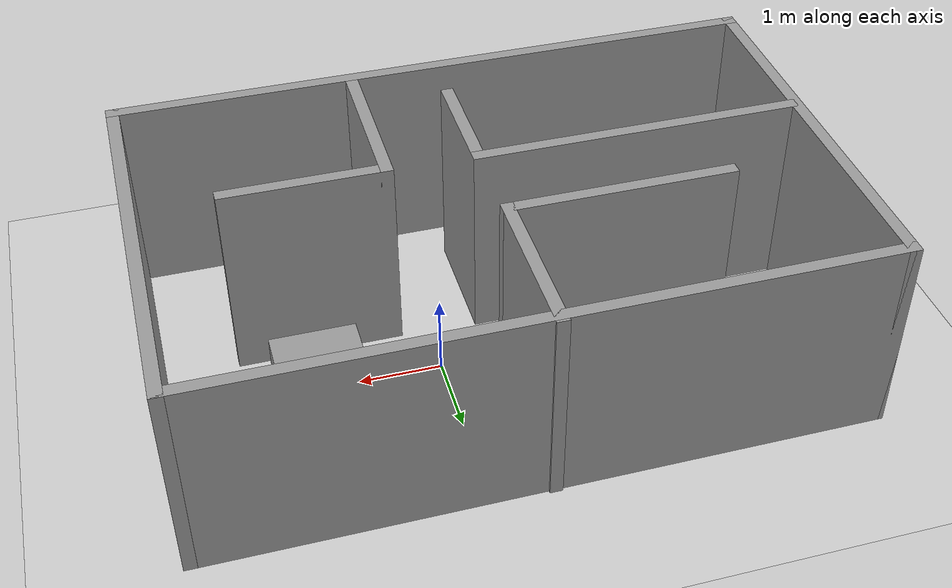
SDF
<sdf version="1.7">
 <world name="default">
  <light name="sun" type="directional">
   <pose>0 0 10 0 -0 0</pose>
   <diffuse>0.8 0.8 0.8 1</diffuse>
   <specular>0.2 0.2 0.2 1</specular>
   <attenuation>
    <range>1000</range>
    <constant>0.9</constant>
    <linear>0.01</linear>
    <quadratic>0.001</quadratic>
   </attenuation>
   <direction>-0.5 0.1 -0.9</direction>
   <spot><inner_angle>0</inner_angle><outer_angle>0</outer_angle><falloff>0</falloff></spot>
  </light>
  <model name="ground_plane">
   <static>1</static>
   <link name="link">
    <collision name="collision">
     <geometry><plane><normal>0 0 1</normal><size>100 100</size></plane></geometry>
     <surface>
      <contact><collide_bitmask>65535</collide_bitmask></contact>
      <friction><ode><mu>100</mu><mu2>50</mu2></ode></friction>
     </surface>
    </collision>
    <visual name="visual">
     <cast_shadows>0</cast_shadows>
     <geometry><plane><normal>0 0 1</normal><size>100 100</size></plane></geometry>
     <material>
      <script><uri>file://media/materials/scripts/gazebo.material</uri><name>Gazebo/Grey</name></script>
     </material>
    </visual>
   </link>
  </model>
  <gravity>0 0 -9.8</gravity>
  <magnetic_field>6e-06 2.3e-05 -4.2e-05</magnetic_field>
  <atmosphere type="adiabatic"/>
  <physics type="ode">
   <max_step_size>0.001</max_step_size>
   <real_time_factor>1</real_time_factor>
   <real_time_update_rate>1000</real_time_update_rate>
  </physics>
  <scene><ambient>0.4 0.4 0.4 1</ambient><background>0.7 0.7 0.7 1</background><shadows>1</shadows></scene>
  <audio><device>default</device></audio>
  <spherical_coordinates>
   <surface_model>EARTH_WGS84</surface_model>
   <latitude_deg>0</latitude_deg>
   <longitude_deg>0</longitude_deg>
   <elevation>0</elevation>
   <heading_deg>0</heading_deg>
  </spherical_coordinates>
  <model name="room">
   <pose>-0.665776 -0.25254 0 0 -0 0</pose>
   <link name="Wall_11">
    <collision name="Wall_11_Collision">
     <geometry><box><size>4 0.15 2.5</size></box></geometry>
     <pose>0 0 1.25 0 -0 0</pose>
    </collision>
    <visual name="Wall_11_Visual">
     <pose>0 0 1.25 0 -0 0</pose>
     <geometry><box><size>4 0.15 2.5</size></box></geometry>
     <material>
      <script><uri>file://media/materials/scripts/gazebo.material</uri><name>Gazebo/Grey</name></script>
      <ambient>1 1 1 1</ambient>
     </material>
     <meta><layer>0</layer></meta>
    </visual>
    <pose>-1.92396 -0.434245 0 0 -0 0</pose>
   </link>
   <link name="Wall_12">
    <collision name="Wall_12_Collision">
     <geometry><box><size>1.5 0.15 2.5</size></box></geometry>
     <pose>0 0 1.25 0 -0 0</pose>
    </collision>
    <visual name="Wall_12_Visual">
     <pose>0 0 1.25 0 -0 0</pose>
     <geometry><box><size>1.5 0.15 2.5</size></box></geometry>
     <material>
      <script><uri>file://media/materials/scripts/gazebo.material</uri><name>Gazebo/Grey</name></script>
      <ambient>1 1 1 1</ambient>
     </material>
     <meta><layer>0</layer></meta>
    </visual>
    <pose>0.001044 -1.10925 0 0 -0 -1.5708</pose>
   </link>
   <link name="Wall_15">
    <collision name="Wall_15_Collision">
     <geometry><box><size>2 0.15 2.5</size></box></geometry>
     <pose>0 0 1.25 0 -0 0</pose>
    </collision>
    <visual name="Wall_15_Visual">
     <pose>0 0 1.25 0 -0 0</pose>
     <geometry><box><size>2 0.15 2.5</size></box></geometry>
     <material>
      <script><uri>file://media/materials/scripts/gazebo.material</uri><name>Gazebo/Grey</name></script>
      <ambient>1 1 1 1</ambient>
     </material>
     <meta><layer>0</layer></meta>
    </visual>
    <pose>1.06347 -1.41034 0 0 -0 1.5708</pose>
   </link>
   <link name="Wall_16">
    <collision name="Wall_16_Collision">
     <geometry><box><size>2 0.15 2.5</size></box></geometry>
     <pose>0 0 1.25 0 -0 0</pose>
    </collision>
    <visual name="Wall_16_Visual">
     <pose>0 0 1.25 0 -0 0</pose>
     <geometry><box><size>2 0.15 2.5</size></box></geometry>
     <material>
      <script><uri>file://media/materials/scripts/gazebo.material</uri><name>Gazebo/Grey</name></script>
      <ambient>1 1 1 1</ambient>
     </material>
     <meta><layer>0</layer></meta>
    </visual>
    <pose>1.98847 -0.485339 0 0 -0 0</pose>
   </link>
   <link name="Wall_3">
    <collision name="Wall_3_Collision">
     <geometry><box><size>8 0.15 2.5</size></box></geometry>
     <pose>0 0 1.25 0 -0 0</pose>
    </collision>
    <visual name="Wall_3_Visual">
     <pose>0 0 1.25 0 -0 0</pose>
     <geometry><box><size>8 0.15 2.5</size></box></geometry>
     <material>
      <script><uri>file://media/materials/scripts/gazebo.material</uri><name>Gazebo/Grey</name></script>
      <ambient>1 1 1 1</ambient>
     </material>
     <meta><layer>0</layer></meta>
    </visual>
    <pose>0 2.40979 0 0 -0 0</pose>
   </link>
   <link name="Wall_4">
    <collision name="Wall_4_Collision">
     <geometry><box><size>5 0.15 2.5</size></box></geometry>
     <pose>0 0 1.25 0 -0 0</pose>
    </collision>
    <visual name="Wall_4_Visual">
     <pose>0 0 1.25 0 -0 0</pose>
     <geometry><box><size>5 0.15 2.5</size></box></geometry>
     <material>
      <script><uri>file://media/materials/scripts/gazebo.material</uri><name>Gazebo/Grey</name></script>
      <ambient>1 1 1 1</ambient>
     </material>
     <meta><layer>0</layer></meta>
    </visual>
    <pose>3.925 -0.015209 0 0 -0 -1.5708</pose>
   </link>
   <link name="Wall_5">
    <collision name="Wall_5_Collision">
     <geometry><box><size>8 0.15 2.5</size></box></geometry>
     <pose>0 0 1.25 0 -0 0</pose>
    </collision>
    <visual name="Wall_5_Visual">
     <pose>0 0 1.25 0 -0 0</pose>
     <geometry><box><size>8 0.15 2.5</size></box></geometry>
     <material>
      <script><uri>file://media/materials/scripts/gazebo.material</uri><name>Gazebo/Grey</name></script>
      <ambient>1 1 1 1</ambient>
     </material>
     <meta><layer>0</layer></meta>
    </visual>
    <pose>0 -2.44021 0 0 -0 3.14159</pose>
   </link>
   <link name="Wall_6">
    <collision name="Wall_6_Collision">
     <geometry><box><size>5 0.15 2.5</size></box></geometry>
     <pose>0 0 1.25 0 -0 0</pose>
    </collision>
    <visual name="Wall_6_Visual">
     <pose>0 0 1.25 0 -0 0</pose>
     <geometry><box><size>5 0.15 2.5</size></box></geometry>
     <material>
      <script><uri>file://media/materials/scripts/gazebo.material</uri><name>Gazebo/Grey</name></script>
      <ambient>1 1 1 1</ambient>
     </material>
     <meta><layer>0</layer></meta>
    </visual>
    <pose>-3.925 -0.015209 0 0 -0 1.5708</pose>
   </link>
   <link name="Wall_8">
    <collision name="Wall_8_Collision">
     <geometry><box><size>2 0.15 2.5</size></box></geometry>
     <pose>0 0 1.25 0 -0 0</pose>
    </collision>
    <visual name="Wall_8_Visual">
     <pose>0 0 1.25 0 -0 0</pose>
     <geometry><box><size>2 0.15 2.5</size></box></geometry>
     <material>
      <script><uri>file://media/materials/scripts/gazebo.material</uri><name>Gazebo/Grey</name></script>
      <ambient>1 1 1 1</ambient>
     </material>
     <meta><layer>0</layer></meta>
    </visual>
    <pose>-0.046769 1.51521 0 0 -0 -1.5708</pose>
   </link>
   <link name="Wall_9">
    <collision name="Wall_9_Collision">
     <geometry><box><size>2.75 0.15 2.5</size></box></geometry>
     <pose>0 0 1.25 0 -0 0</pose>
    </collision>
    <visual name="Wall_9_Visual">
     <pose>0 0 1.25 0 -0 0</pose>
     <geometry><box><size>2.75 0.15 2.5</size></box></geometry>
     <material>
      <script><uri>file://media/materials/scripts/gazebo.material</uri><name>Gazebo/Grey</name></script>
      <ambient>1 1 1 1</ambient>
     </material>
     <meta><layer>0</layer></meta>
    </visual>
    <pose>-1.34677 0.590209 0 0 -0 3.14159</pose>
   </link>
   <static>1</static>
  </model>
  <model name="unit_box">
   <pose>1.50274 0.570567 0.5 0 -0 0</pose>
   <link name="link">
    <inertial>
     <mass>1</mass>
     <inertia>
      <ixx>0.166667</ixx>
      <ixy>0</ixy>
      <ixz>0</ixz>
      <iyy>0.166667</iyy>
      <iyz>0</iyz>
      <izz>0.166667</izz>
     </inertia>
    </inertial>
    <collision name="collision"><geometry><box><size>1 1 1</size></box></geometry></collision>
    <visual name="visual">
     <geometry><box><size>1 1 1</size></box></geometry>
     <material>
      <script><name>Gazebo/Grey</name><uri>file://media/materials/scripts/gazebo.material</uri></script>
     </material>
    </visual>
   </link>
  </model>
 </world>
</sdf>
